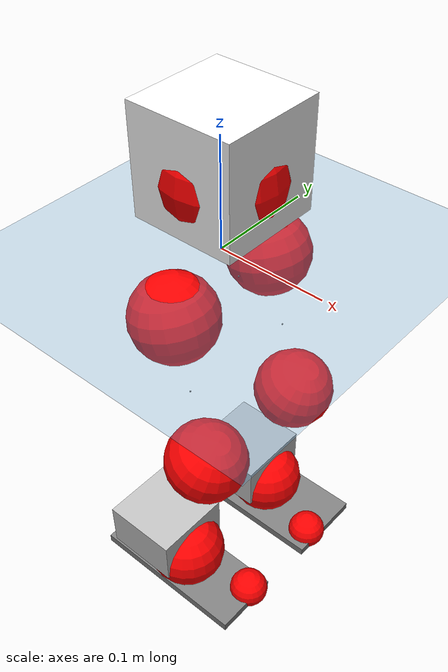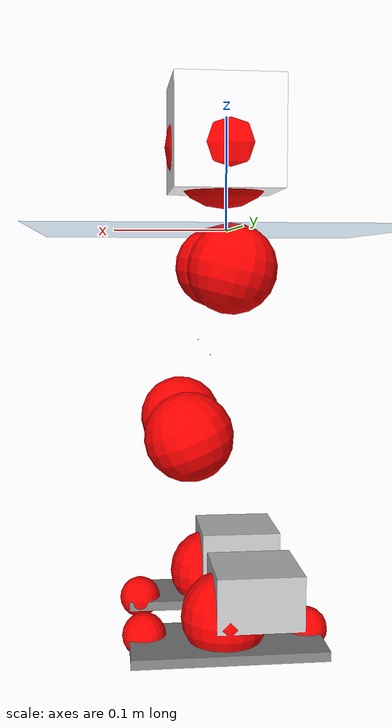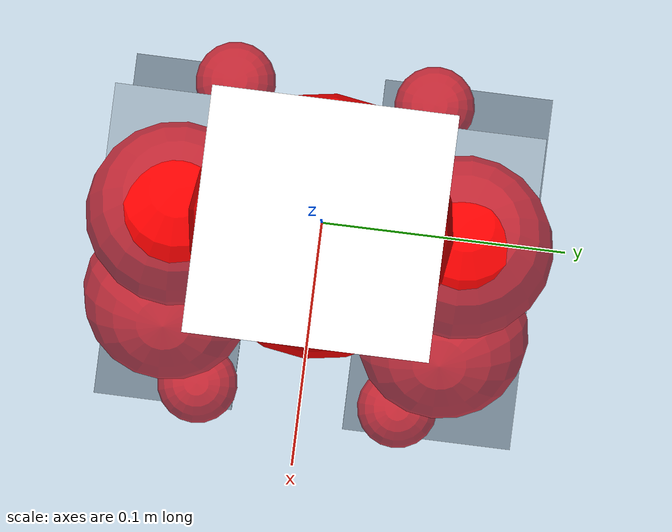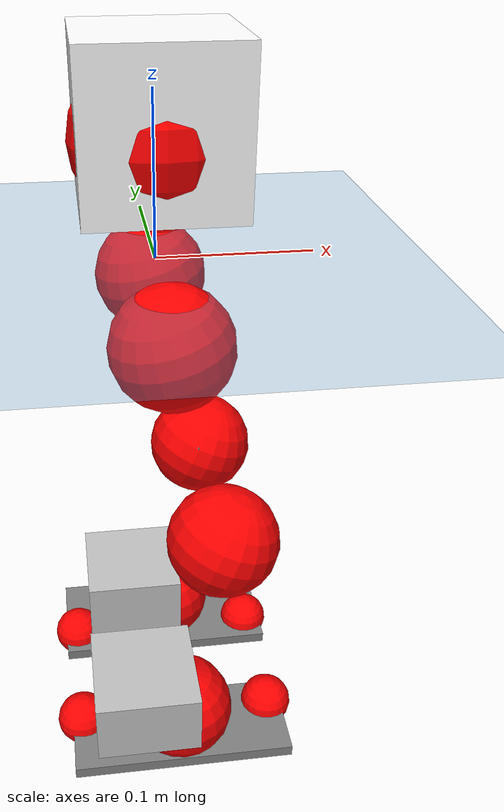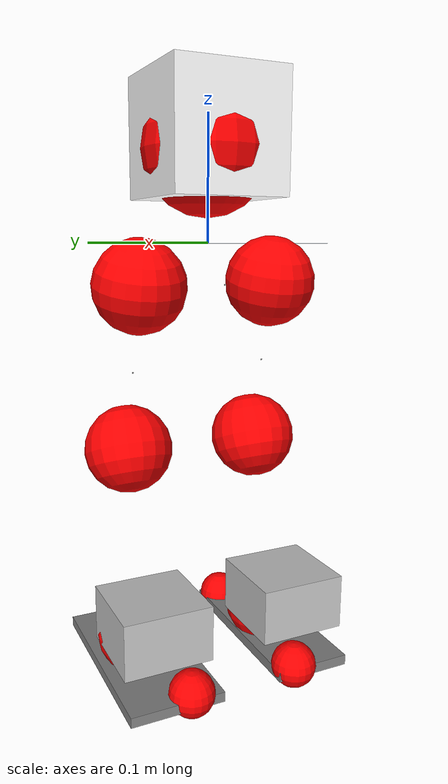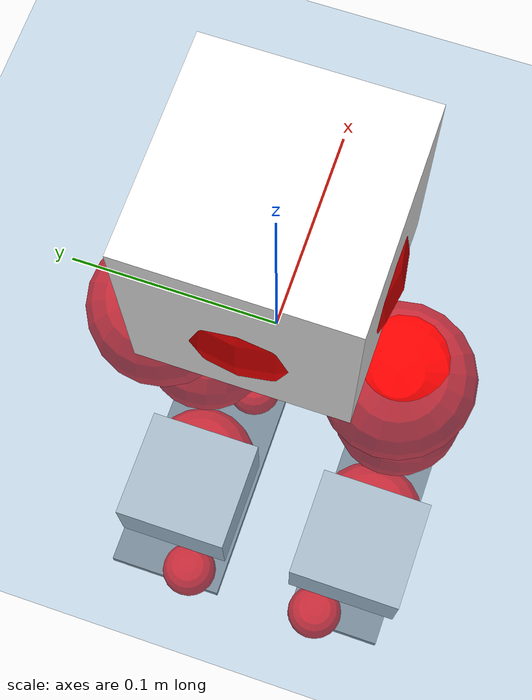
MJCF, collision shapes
<mujoco model="pi_12dof_release_v1">
  <compiler angle="radian" assetdir="assets" balanceinertia="true" inertiafromgeom="false"/>

  <option timestep="0.005" density="1.2" viscosity="2e-05"/>

  <size nkey="1"/>

  <visual>
    <quality shadowsize="8192"/>
    <map shadowclip="0.5"/>
  </visual>

  <default>
    <default class="/">
      <joint armature="0.01" damping="0.01" frictionloss="0.01"/>
      <geom contype="0" conaffinity="0" group="1" solref="-1000 -80"/>
      <site size="0.01 0.005 0.005" group="5"/>
      <general forcelimited="true" biastype="affine" gainprm="20" biasprm="0 -20 -0.5"/>
      <default class="foot">
        <geom size="0.0845 0.036 0.005" type="box" condim="6" group="4" priority="1" friction="0.9 0.2 0.2" solimp="0.015 1 0.005"/>
      </default>
      <default class="reward_collision_sphere">
        <geom group="5" rgba="1 0 0 1"/>
      </default>
    </default>
  </default>

  <asset>
    <texture type="skybox" colorspace="auto" name="//unnamed_texture_0" builtin="gradient" rgb1="0.95 0.95 0.95" rgb2="0.95 0.95 0.95" width="100" height="600"/>
    <texture type="2d" colorspace="auto" name="texplane" builtin="checker" rgb1="0.345 0.575 0.748" rgb2="0.345 0.575 0.748" markrgb="1 1 1" width="512" height="512"/>
    <material name="MatPlane" class="/" texture="texplane" texuniform="true" texrepeat="2 2" specular="0.9"/>
    <mesh name="baselink_1" class="/" file="baselink_1.STL"/>
    <mesh name="r_hip_pitch_link" class="/" file="r_hip_pitch_link.STL"/>
    <mesh name="r_hip_roll_link" class="/" file="r_hip_roll_link.STL"/>
    <mesh name="r_thigh_link" class="/" file="r_thigh_link.STL"/>
    <mesh name="r_calf_link" class="/" file="r_calf_link.STL"/>
    <mesh name="r_ankle_pitch_link" class="/" file="r_ankle_pitch_link.STL"/>
    <mesh name="r_ankle_roll_link" class="/" file="r_ankle_roll_link.STL"/>
    <mesh name="l_hip_pitch_link" class="/" file="l_hip_pitch_link.STL"/>
    <mesh name="l_hip_roll_link" class="/" file="l_hip_roll_link.STL"/>
    <mesh name="l_thigh_link" class="/" file="l_thigh_link.STL"/>
    <mesh name="l_calf_link" class="/" file="l_calf_link.STL"/>
    <mesh name="l_ankle_pitch_link" class="/" file="l_ankle_pitch_link.STL"/>
    <mesh name="l_ankle_roll_link" class="/" file="l_ankle_roll_link.STL"/>
  </asset>

  <worldbody>
    <geom name="floor" class="/" size="100 100 0.125" type="plane" group="0" material="MatPlane"/>
    <light name="toplight_shadow" class="/" pos="0 0 5" dir="0.0990148 0.0990148 -0.990148" type="directional" ambient="0.04 0.04 0.04" diffuse="0.55 0.55 0.55" specular="0.12 0.12 0.12"/>
    <light name="toplight_fill" class="/" pos="0 0 5" dir="0.0990148 0.0990148 -0.990148" type="directional" castshadow="false" ambient="0.04 0.04 0.04" diffuse="0.3 0.3 0.3" specular="0.08 0.08 0.08"/>
    <body name="trunk" pos="0.00251834 -6.20223e-05 -0.000886534" quat="0.999999 -0.00012956 -0.00100068 -0.000910176">
      <inertial pos="-0.000176115 -0.000153571 0.0427361" quat="0.697065 0.00935688 0.00469333 0.716931" mass="1.85278" diaginertia="0.0136213 0.00239978 0.00511521"/>
      <joint name="//unnamed_joint_0" type="free"/>
      <geom name="//unnamed_geom_1" class="/" type="mesh" density="0" rgba="1 1 1 1" mesh="baselink_1"/>
      <geom name="//unnamed_geom_2" class="/" size="0.0479236 0.0479236 0.0479236" pos="0 0 0.0833201" type="box" rgba="1 1 1 1"/>
      <geom name="//unnamed_geom_3" class="reward_collision_sphere" size="0.0527159" pos="0 0 0.0729051"/>
      <site name="imu" class="/" pos="0.000678599 0.00709905 0.0136737" size="0.00958472"/>
      <camera name="track" class="/" pos="0 -1.53327 0" quat="0.707107 0.707107 0 0" mode="trackcom"/>
      <camera name="ego_camera" class="/" pos="0.0800459 0 0.18747" quat="-0.5 -0.5 0.5 0.5"/>
      <body name="r_hip_pitch_link" pos="-0.000587959 -0.0164852 -0.0333637" quat="0.992191 0.000217324 -0.124729 0.00010986">
        <inertial pos="2.71799e-05 -0.0454835 0.000226982" quat="-0.0186924 0.704845 -0.0271023 0.708597" mass="0.318034" diaginertia="0.000152999 2.60243e-05 0.00010182"/>
        <joint name="r_hip_pitch_joint" class="/" pos="0 0 0" axis="0.00968402 -0.999944 -0.00423044" range="-1.77144 1.2324" armature="0.0097711" damping="0.0260772" frictionloss="0.0107478"/>
        <geom name="//unnamed_geom_4" class="/" type="mesh" density="0" rgba="0.75294 0.75294 0.75294 1" mesh="r_hip_pitch_link"/>
        <geom name="//unnamed_geom_5" class="/" size="0.000479236 0.000479236 0.000479236" type="box" rgba="0.75294 0.75294 0.75294 1"/>
        <body name="r_hip_roll_link" pos="0.00171212 -0.0434442 0.00166969" quat="0.999999 0.00111761 0.000768472 -3.61979e-05">
          <inertial pos="0.00105693 -0.00214116 -0.0663612" quat="0.705876 -0.0792441 -0.0819664 0.6991" mass="0.330908" diaginertia="0.000454829 7.14595e-05 0.000157324"/>
          <joint name="r_hip_roll_joint" class="/" pos="0 0 0" axis="-0.999929 -0.00286522 -0.0115489" range="-0.103734 0.450115" armature="0.00944212" damping="0" frictionloss="0.0108654"/>
          <geom name="//unnamed_geom_6" class="/" type="mesh" density="0" rgba="0.75294 0.75294 0.75294 1" mesh="r_hip_roll_link"/>
          <geom name="//unnamed_geom_7" class="/" size="0.000479236 0.000479236 0.000479236" type="box" rgba="0.75294 0.75294 0.75294 1"/>
          <geom name="//unnamed_geom_8" class="reward_collision_sphere" size="0.0383389"/>
          <body name="r_thigh_link" pos="-0.00172272 -0.00235404 -0.0719323" quat="1 -0.000465256 -0.000719272 -0.000246774">
            <inertial pos="-0.00235754 0.000494002 -0.0472497" quat="0.736851 0.676055 -0.000639091 0.000340904" mass="0.0990825" diaginertia="0.000174511 2.6474e-05 7.26191e-05"/>
            <joint name="r_thigh_joint" class="/" pos="0 0 0" axis="0.000569988 0.000123015 -1" range="-0.353301 0.627888" armature="0.00887252" damping="0.000716879" frictionloss="0.00838792"/>
            <geom name="//unnamed_geom_9" class="/" type="mesh" density="0" rgba="0.75294 0.75294 0.75294 1" mesh="r_thigh_link"/>
            <geom name="//unnamed_geom_10" class="/" size="0.000479236 0.000479236 0.000479236" type="box" rgba="0.75294 0.75294 0.75294 1"/>
            <body name="r_calf_link" pos="-0.0015679 -0.00155117 -0.076157" quat="0.947891 0.000412795 0.318594 -0.000898328">
              <inertial pos="0.000570581 -0.0035119 -0.0729398" quat="0.999965 0.00510434 0.00445984 -0.00491288" mass="0.708683" diaginertia="0.00463538 0.000909993 0.000204508"/>
              <joint name="r_calf_joint" class="/" pos="0 0 0" axis="0.0122726 -0.999914 -0.00454041" range="-1.59814 0.658162" armature="0.00999611" damping="0.0037854" frictionloss="0.0107785"/>
              <geom name="//unnamed_geom_11" class="/" type="mesh" density="0" rgba="0.75294 0.75294 0.75294 1" mesh="r_calf_link"/>
              <geom name="//unnamed_geom_12" class="/" size="0.000479236 0.000479236 0.000479236" type="box" rgba="0.75294 0.75294 0.75294 1"/>
              <geom name="//unnamed_geom_13" class="reward_collision_sphere" size="0.0383389"/>
              <body name="r_ankle_pitch_link" pos="0.000745728 -0.00252999 -0.145925" quat="0.98009 3.06563e-05 -0.198554 -0.000278161">
                <inertial pos="0.00657996 0.000264259 0.000186311" quat="-0.00301711 0.709122 0.00609068 0.705053" mass="0.156614" diaginertia="0.000422245 5.8282e-05 0.000149859"/>
                <joint name="r_ankle_pitch_joint" class="/" pos="0 0 0" axis="0.00338451 -0.99992 -0.0121895" range="-1.28342 0.506533" armature="0.00962877" damping="0" frictionloss="0.0103366"/>
                <geom name="//unnamed_geom_14" class="/" type="mesh" density="0" rgba="0.75294 0.75294 0.75294 1" mesh="r_ankle_pitch_link"/>
                <geom name="//unnamed_geom_15" class="/" size="0.0373804 0.0383389 0.0239618" type="box" rgba="0.75294 0.75294 0.75294 1"/>
                <body name="r_ankle_roll_link" pos="0.0806554 -4.31399e-05 2.73903e-05" quat="1 -0.000158397 -8.40627e-05 -2.88143e-05">
                  <inertial pos="-0.0255389 9.563e-05 -0.0151138" quat="0.55074 0.438743 0.43095 0.564333" mass="0.453997" diaginertia="0.00156247 0.000273408 0.000336798"/>
                  <joint name="r_ankle_roll_joint" class="/" pos="0 0 0" axis="-0.999903 0.0138389 -0.00142593" stiffness="0.00208486" range="-0.204279 0.152976" armature="0.010937" damping="0.014459" frictionloss="0.00960267"/>
                  <geom name="//unnamed_geom_16" class="/" type="mesh" density="0" rgba="0.75294 0.75294 0.75294 1" mesh="r_ankle_roll_link"/>
                  <geom name="//unnamed_geom_17" class="/" type="mesh" rgba="0.75294 0.75294 0.75294 1" mesh="r_ankle_roll_link"/>
                  <geom name="right_foot" class="foot" size="0.0811964 0.0329294 0.00443781" pos="-0.0544312 0 -0.045826"/>
                  <geom name="//unnamed_geom_19" class="reward_collision_sphere" size="0.0383389" pos="-0.0533639 0 -0.02083"/>
                  <geom name="//unnamed_geom_20" class="reward_collision_sphere" size="0.0191694" pos="0.0160092 0.0153327 -0.04166"/>
                  <geom name="//unnamed_geom_21" class="reward_collision_sphere" size="0.0191694" pos="-0.128073 0.0153327 -0.04166"/>
                  <site name="right_foot" class="foot" pos="-0.0544312 0 -0.045826" size="0.00958472"/>
                </body>
              </body>
            </body>
          </body>
        </body>
      </body>
      <body name="l_hip_pitch_link" pos="0.000331679 0.0183164 -0.0361547" quat="0.992188 -0.000114536 -0.12475 0.000200615">
        <inertial pos="0.00101727 0.0439391 -0.00255769" quat="-0.0504179 0.703588 0.0313772 0.708123" mass="0.350015" diaginertia="0.000174853 2.72793e-05 0.000125961"/>
        <joint name="l_hip_pitch_joint" class="/" pos="0 0 0" axis="0.0132586 0.999905 0.0038462" range="-1.24954 1.74847" armature="0.00940391" damping="0.0150601" frictionloss="0.00948216"/>
        <geom name="//unnamed_geom_22" class="/" type="mesh" density="0" rgba="0.75294 0.75294 0.75294 1" mesh="l_hip_pitch_link"/>
        <geom name="//unnamed_geom_23" class="/" size="0.000479236 0.000479236 0.000479236" type="box" rgba="0.75294 0.75294 0.75294 1"/>
        <body name="l_hip_roll_link" pos="0.000395823 0.0403718 0.00309197" quat="1 0.000260471 0.000182026 -0.000160603">
          <inertial pos="-0.00152026 -0.000259396 -0.0646223" quat="0.699291 -0.0753474 -0.0774583 0.706622" mass="0.350052" diaginertia="0.000459574 7.18652e-05 0.000159971"/>
          <joint name="l_hip_roll_joint" class="/" pos="0 0 0" axis="-1 -0.000805207 0.000305919" range="-0.485408 0.169034" armature="0.00944148" damping="0.00431128" frictionloss="0.0096691"/>
          <geom name="//unnamed_geom_24" class="/" type="mesh" density="0" rgba="0.75294 0.75294 0.75294 1" mesh="l_hip_roll_link"/>
          <geom name="//unnamed_geom_25" class="/" size="0.000479236 0.000479236 0.000479236" type="box" rgba="0.75294 0.75294 0.75294 1"/>
          <geom name="//unnamed_geom_26" class="reward_collision_sphere" size="0.0383389"/>
          <body name="l_thigh_link" pos="0.000206751 0.000202164 -0.0744113" quat="1 0.000274142 -0.000147099 -0.000340626">
            <inertial pos="0.000620826 0.00120776 -0.0492793" quat="0.67627 0.736626 0.0026187 0.00580878" mass="0.0989369" diaginertia="0.000169345 2.50627e-05 6.8438e-05"/>
            <joint name="l_thigh_joint" class="/" pos="0 0 0" axis="0.00123354 0.0010098 -0.999999" stiffness="0.00161306" range="-0.59249 0.343279" armature="0.0100748" damping="0" frictionloss="0.0101926"/>
            <geom name="//unnamed_geom_27" class="/" type="mesh" density="0" rgba="0.75294 0.75294 0.75294 1" mesh="l_thigh_link"/>
            <geom name="//unnamed_geom_28" class="/" size="0.000479236 0.000479236 0.000479236" type="box" rgba="0.75294 0.75294 0.75294 1"/>
            <body name="l_calf_link" pos="-0.000121055 -0.000906349 -0.0721983" quat="0.947535 0.00119714 0.319651 0.000503718">
              <inertial pos="0.00305924 0.00454063 -0.0753509" quat="0.999871 0.0135787 0.00222829 0.00828267" mass="0.714914" diaginertia="0.0048363 0.000917843 0.000213896"/>
              <joint name="l_calf_joint" class="/" pos="0 0 0" axis="0.00571396 0.999982 -0.00199758" range="-0.632702 1.62012" armature="0.00932089" damping="0.0105034" frictionloss="0.00828975"/>
              <geom name="//unnamed_geom_29" class="/" type="mesh" density="0" rgba="0.75294 0.75294 0.75294 1" mesh="l_calf_link"/>
              <geom name="//unnamed_geom_30" class="/" size="0.000479236 0.000479236 0.000479236" type="box" rgba="0.75294 0.75294 0.75294 1"/>
              <geom name="//unnamed_geom_31" class="reward_collision_sphere" size="0.0383389"/>
              <body name="l_ankle_pitch_link" pos="0.00081331 0.000788235 -0.148229" quat="0.980066 6.60629e-08 -0.19867 6.34288e-07">
                <inertial pos="0.0062 -0.000994918 -0.000272412" quat="-0.0014519 0.707329 0.00250907 0.706878" mass="0.149652" diaginertia="0.00043147 6.02378e-05 0.000146203"/>
                <joint name="l_ankle_pitch_joint" class="/" pos="0 0 0" axis="-0.000166301 0.999992 0.0039808" range="-0.505218 1.29116" armature="0.0095616" damping="0.00862213" frictionloss="0.00988693"/>
                <geom name="//unnamed_geom_32" class="/" type="mesh" density="0" rgba="0.75294 0.75294 0.75294 1" mesh="l_ankle_pitch_link"/>
                <geom name="//unnamed_geom_33" class="/" size="0.0373804 0.0383389 0.0239618" type="box" rgba="0.75294 0.75294 0.75294 1"/>
                <body name="l_ankle_roll_link" pos="0.079613 0.00106196 0.00104592" quat="1 -1.08513e-06 -0.000173274 0.000180059">
                  <inertial pos="-0.0285234 -0.000488337 -0.0157272" quat="0.554475 0.433737 0.43393 0.562258" mass="0.457689" diaginertia="0.00157269 0.000275684 0.000359561"/>
                  <joint name="l_ankle_roll_joint" class="/" pos="0 0 0" axis="-0.999917 -0.0116702 0.00542211" range="-0.150734 0.16897" armature="0.0097123" damping="0.0219929" frictionloss="0.00944516"/>
                  <geom name="//unnamed_geom_34" class="/" type="mesh" density="0" rgba="0.75294 0.75294 0.75294 1" mesh="l_ankle_roll_link"/>
                  <geom name="//unnamed_geom_35" class="/" type="mesh" rgba="0.75294 0.75294 0.75294 1" mesh="l_ankle_roll_link"/>
                  <geom name="left_foot" class="foot" size="0.083697 0.0400578 0.00425045" pos="-0.0544312 0 -0.045826"/>
                  <geom name="//unnamed_geom_37" class="reward_collision_sphere" size="0.0383389" pos="-0.0533639 0 -0.02083"/>
                  <geom name="//unnamed_geom_38" class="reward_collision_sphere" size="0.0191694" pos="0.0160092 -0.0153327 -0.04166"/>
                  <geom name="//unnamed_geom_39" class="reward_collision_sphere" size="0.0191694" pos="-0.128073 -0.0153327 -0.04166"/>
                  <site name="left_foot" class="foot" pos="-0.0544312 0 -0.045826" size="0.00958472"/>
                </body>
              </body>
            </body>
          </body>
        </body>
      </body>
    </body>
  </worldbody>

  <contact>
    <pair class="/" geom1="floor" geom2="right_foot" name="//unnamed_contact_1"/>
    <pair class="/" geom1="floor" geom2="left_foot" name="//unnamed_contact_0"/>
  </contact>

  <actuator>
    <general name="r_hip_pitch_joint" class="/" joint="r_hip_pitch_joint" forcerange="-19.7901 19.7901" gainprm="19.4966" biasprm="0 -19.4966 -0.492607"/>
    <general name="r_hip_roll_joint" class="/" joint="r_hip_roll_joint" forcerange="-21.4955 21.4955" gainprm="19.4966" biasprm="0 -19.4966 -0.492607"/>
    <general name="r_thigh_joint" class="/" joint="r_thigh_joint" forcerange="-20.8825 20.8825" gainprm="19.4966" biasprm="0 -19.4966 -0.492607"/>
    <general name="r_calf_joint" class="/" joint="r_calf_joint" forcerange="-22.0663 22.0663" gainprm="19.4966" biasprm="0 -19.4966 -0.492607"/>
    <general name="r_ankle_pitch_joint" class="/" joint="r_ankle_pitch_joint" forcerange="-19.3034 19.3034" gainprm="19.4966" biasprm="0 -19.4966 -0.492607"/>
    <general name="r_ankle_roll_joint" class="/" joint="r_ankle_roll_joint" forcerange="-18.0557 18.0557" gainprm="19.4966" biasprm="0 -19.4966 -0.492607"/>
    <general name="l_hip_pitch_joint" class="/" joint="l_hip_pitch_joint" forcerange="-20.0105 20.0105" gainprm="19.4966" biasprm="0 -19.4966 -0.492607"/>
    <general name="l_hip_roll_joint" class="/" joint="l_hip_roll_joint" forcerange="-19.1542 19.1542" gainprm="19.4966" biasprm="0 -19.4966 -0.492607"/>
    <general name="l_thigh_joint" class="/" joint="l_thigh_joint" forcerange="-20.6623 20.6623" gainprm="19.4966" biasprm="0 -19.4966 -0.492607"/>
    <general name="l_calf_joint" class="/" joint="l_calf_joint" forcerange="-19.7353 19.7353" gainprm="19.4966" biasprm="0 -19.4966 -0.492607"/>
    <general name="l_ankle_pitch_joint" class="/" joint="l_ankle_pitch_joint" forcerange="-21.0477 21.0477" gainprm="19.4966" biasprm="0 -19.4966 -0.492607"/>
    <general name="l_ankle_roll_joint" class="/" joint="l_ankle_roll_joint" forcerange="-19.9978 19.9978" gainprm="19.4966" biasprm="0 -19.4966 -0.492607"/>
  </actuator>

  <sensor>
    <gyro site="imu" name="imu_angular_velocity"/>
    <velocimeter site="imu" name="imu_linear_velocity"/>
    <framelinvel objtype="site" objname="left_foot" name="left_foot_global_linear_velocity"/>
    <framelinvel objtype="site" objname="right_foot" name="right_foot_global_linear_velocity"/>
  </sensor>

  <keyframe>
    <key name="home" qpos="0 0 0.291 1 0 0 0 0.4 0 0 -0.8 0.4 0 -0.4 0 0 0.8 -0.4 0"/>
  </keyframe>
</mujoco>
